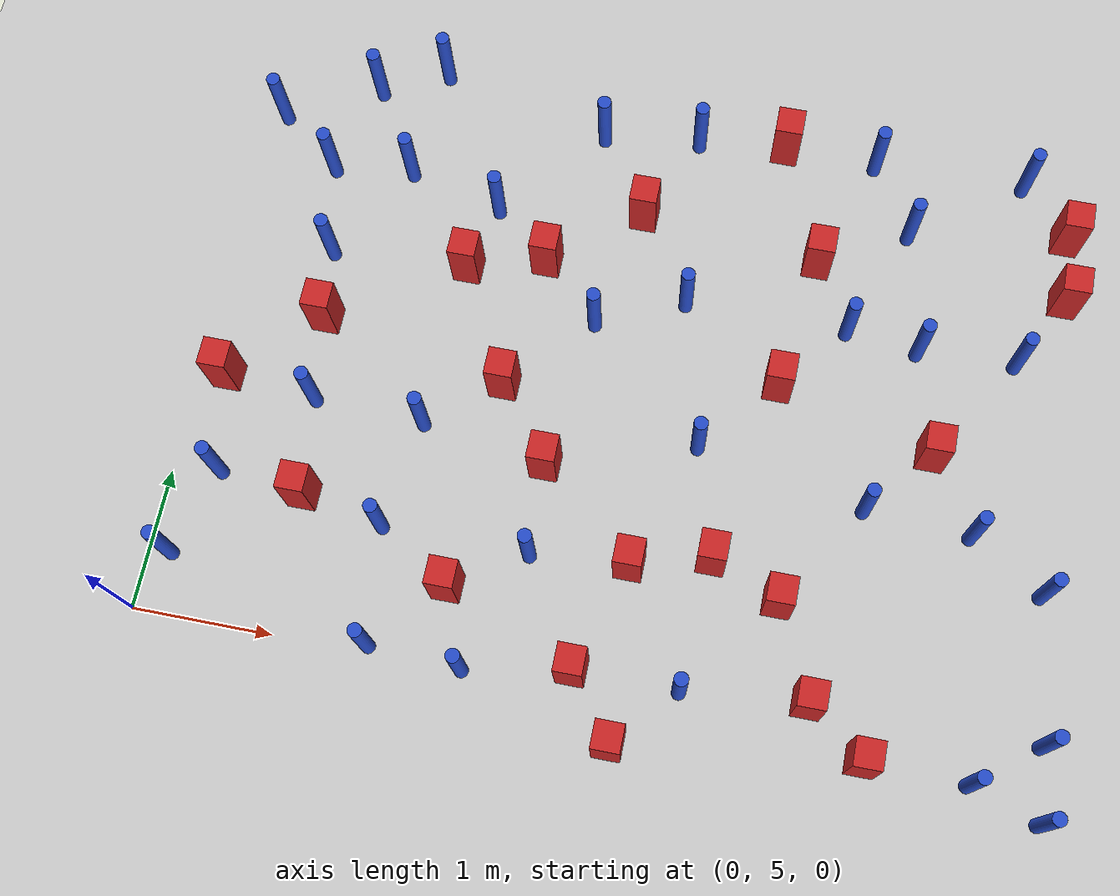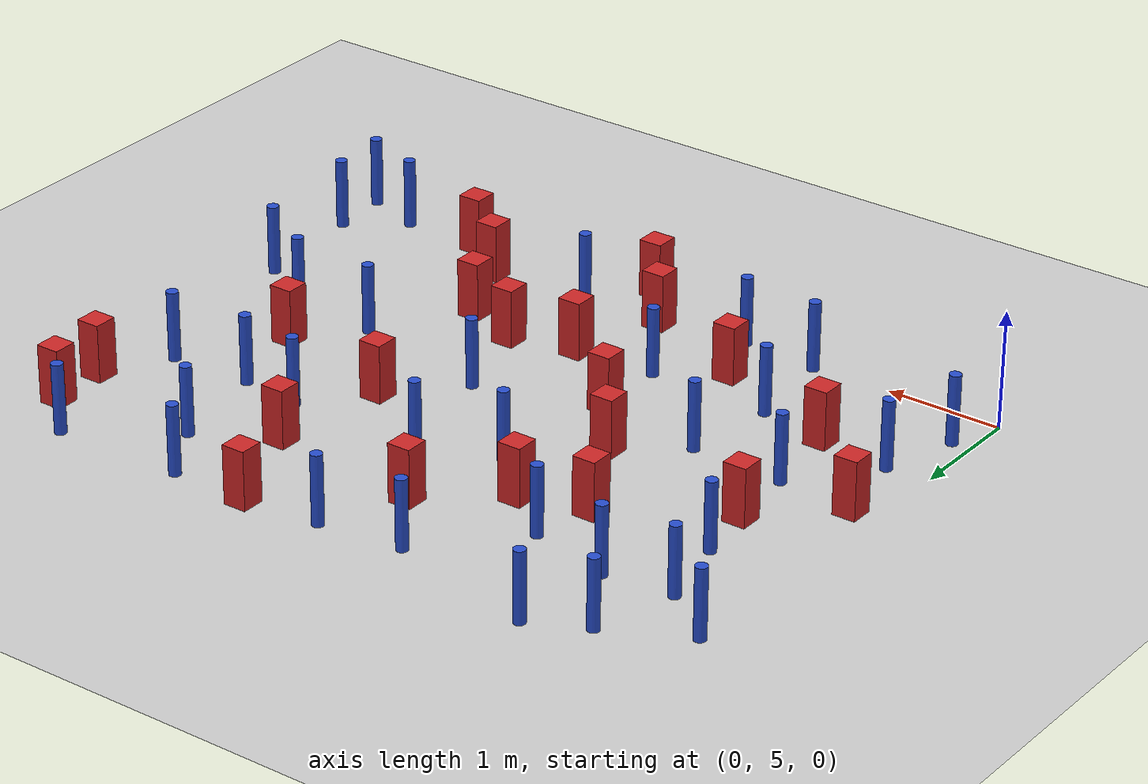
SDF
<sdf version="1.6">
 <world name="default">
  <model name="ground_plane">
   <static>1</static>
   <link name="link">
    <collision name="collision">
     <geometry><plane><normal>0 0 1</normal><size>100 100</size></plane></geometry>
     <surface><friction><ode><mu>100</mu><mu2>50</mu2></ode></friction></surface>
    </collision>
    <visual name="visual">
     <cast_shadows>0</cast_shadows>
     <geometry><plane><normal>0 0 1</normal><size>100 100</size></plane></geometry>
     <material>
      <ambient>1.0 1.0 1.0 1.0</ambient>
      <diffuse>0.8 0.8 0.8 1.0</diffuse>
      <specular>0.01 0.01 0.01 1.000000</specular>
     </material>
    </visual>
   </link>
  </model>
  <model name="pole_obstacle7">
   <static>true</static>
   <pose>3.3641014471 7.95612037145 7.38925637345e-09 -8.47170692799e-08 1.24976765031e-08 -1.7451309302e-07</pose>
   <link name="link">
    <pose>0 0 0.3 0 -0 0</pose>
    <inertial>
     <mass>1</mass>
     <inertia><ixx>0.145833</ixx><ixy>0</ixy><ixz>0</ixz><iyy>0.145833</iyy><iyz>0</iyz><izz>0.125</izz></inertia>
    </inertial>
    <collision name="collision">
     <geometry><cylinder><radius>0.05</radius><length>.6</length></cylinder></geometry>
    </collision>
    <visual name="visual">
     <geometry><cylinder><radius>0.05</radius><length>.6</length></cylinder></geometry>
     <material>
      <script><name>Gazebo/Blue</name><uri>file://media/materials/scripts/gazebo.material</uri></script>
     </material>
    </visual>
   </link>
  </model>
  <model name="square_post_obstacle9">
   <static>true</static>
   <pose>3.88361596768 6.09260042466 1.91545236811e-07 -7.35059704564e-06 1.12565212e-07 2.39332434364e-05</pose>
   <link name="link">
    <pose>0 0 0.25 0 -0 0</pose>
    <inertial>
     <mass>100</mass>
     <inertia>
      <ixx>0.166667</ixx>
      <ixy>0</ixy>
      <ixz>0</ixz>
      <iyy>0.166667</iyy>
      <iyz>0</iyz>
      <izz>0.166667</izz>
     </inertia>
    </inertial>
    <collision name="collision"><geometry><box><size>.2 .2 .5</size></box></geometry></collision>
    <visual name="visual">
     <geometry><box><size>.2 .2 .5</size></box></geometry>
     <material>
      <script><name>Gazebo/Red</name><uri>file://media/materials/scripts/gazebo.material</uri></script>
     </material>
    </visual>
   </link>
  </model>
  <model name="square_post_obstacle13">
   <static>true</static>
   <pose>4.26121895151 8.46386247633 1.91545236811e-07 -7.35059704564e-06 1.12565212e-07 2.39332434364e-05</pose>
   <link name="link">
    <pose>0 0 0.25 0 -0 0</pose>
    <inertial>
     <mass>100</mass>
     <inertia>
      <ixx>0.166667</ixx>
      <ixy>0</ixy>
      <ixz>0</ixz>
      <iyy>0.166667</iyy>
      <iyz>0</iyz>
      <izz>0.166667</izz>
     </inertia>
    </inertial>
    <collision name="collision"><geometry><box><size>.2 .2 .5</size></box></geometry></collision>
    <visual name="visual">
     <geometry><box><size>.2 .2 .5</size></box></geometry>
     <material>
      <script><name>Gazebo/Red</name><uri>file://media/materials/scripts/gazebo.material</uri></script>
     </material>
    </visual>
   </link>
  </model>
  <model name="square_post_obstacle14">
   <static>true</static>
   <pose>6.05690179406 9.00097728239 1.91545236811e-07 -7.35059704564e-06 1.12565212e-07 2.39332434364e-05</pose>
   <link name="link">
    <pose>0 0 0.25 0 -0 0</pose>
    <inertial>
     <mass>100</mass>
     <inertia>
      <ixx>0.166667</ixx>
      <ixy>0</ixy>
      <ixz>0</ixz>
      <iyy>0.166667</iyy>
      <iyz>0</iyz>
      <izz>0.166667</izz>
     </inertia>
    </inertial>
    <collision name="collision"><geometry><box><size>.2 .2 .5</size></box></geometry></collision>
    <visual name="visual">
     <geometry><box><size>.2 .2 .5</size></box></geometry>
     <material>
      <script><name>Gazebo/Red</name><uri>file://media/materials/scripts/gazebo.material</uri></script>
     </material>
    </visual>
   </link>
  </model>
  <model name="square_post_obstacle17">
   <static>true</static>
   <pose>3.32931835858 5.94401239555 1.91545236811e-07 -7.35059704564e-06 1.12565212e-07 2.39332434364e-05</pose>
   <link name="link">
    <pose>0 0 0.25 0 -0 0</pose>
    <inertial>
     <mass>100</mass>
     <inertia>
      <ixx>0.166667</ixx>
      <ixy>0</ixy>
      <ixz>0</ixz>
      <iyy>0.166667</iyy>
      <iyz>0</iyz>
      <izz>0.166667</izz>
     </inertia>
    </inertial>
    <collision name="collision"><geometry><box><size>.2 .2 .5</size></box></geometry></collision>
    <visual name="visual">
     <geometry><box><size>.2 .2 .5</size></box></geometry>
     <material>
      <script><name>Gazebo/Red</name><uri>file://media/materials/scripts/gazebo.material</uri></script>
     </material>
    </visual>
   </link>
  </model>
  <model name="pole_obstacle11">
   <static>true</static>
   <pose>3.23332634742 9.27613377009 7.38925637345e-09 -8.47170692793e-08 1.24976764408e-08 -1.74513093041e-07</pose>
   <link name="link">
    <pose>0 0 0.3 0 -0 0</pose>
    <inertial>
     <mass>1</mass>
     <inertia><ixx>0.145833</ixx><ixy>0</ixy><ixz>0</ixz><iyy>0.145833</iyy><iyz>0</iyz><izz>0.125</izz></inertia>
    </inertial>
    <collision name="collision">
     <geometry><cylinder><radius>0.05</radius><length>.6</length></cylinder></geometry>
    </collision>
    <visual name="visual">
     <geometry><cylinder><radius>0.05</radius><length>.6</length></cylinder></geometry>
     <material>
      <script><name>Gazebo/Blue</name><uri>file://media/materials/scripts/gazebo.material</uri></script>
     </material>
    </visual>
   </link>
  </model>
  <model name="pole_obstacle15">
   <static>true</static>
   <pose>6.16743594063 6.26657277974 7.38925637345e-09 -8.47170692796e-08 1.24976764786e-08 -1.74513093032e-07</pose>
   <link name="link">
    <pose>0 0 0.3 0 -0 0</pose>
    <inertial>
     <mass>1</mass>
     <inertia><ixx>0.145833</ixx><ixy>0</ixy><ixz>0</ixz><iyy>0.145833</iyy><iyz>0</iyz><izz>0.125</izz></inertia>
    </inertial>
    <collision name="collision">
     <geometry><cylinder><radius>0.05</radius><length>.6</length></cylinder></geometry>
    </collision>
    <visual name="visual">
     <geometry><cylinder><radius>0.05</radius><length>.6</length></cylinder></geometry>
     <material>
      <script><name>Gazebo/Blue</name><uri>file://media/materials/scripts/gazebo.material</uri></script>
     </material>
    </visual>
   </link>
  </model>
  <model name="square_post_obstacle26">
   <static>true</static>
   <pose>0.971629620544 6.01338458129 1.91545236811e-07 -7.35059704564e-06 1.12565212e-07 2.39332434364e-05</pose>
   <link name="link">
    <pose>0 0 0.25 0 -0 0</pose>
    <inertial>
     <mass>100</mass>
     <inertia>
      <ixx>0.166667</ixx>
      <ixy>0</ixy>
      <ixz>0</ixz>
      <iyy>0.166667</iyy>
      <iyz>0</iyz>
      <izz>0.166667</izz>
     </inertia>
    </inertial>
    <collision name="collision"><geometry><box><size>.2 .2 .5</size></box></geometry></collision>
    <visual name="visual">
     <geometry><box><size>.2 .2 .5</size></box></geometry>
     <material>
      <script><name>Gazebo/Red</name><uri>file://media/materials/scripts/gazebo.material</uri></script>
     </material>
    </visual>
   </link>
  </model>
  <model name="pole_obstacle21">
   <static>true</static>
   <pose>0.16636004101 5.42641811792 7.38925637345e-09 -8.471706928e-08 1.24976765036e-08 -1.74513093019e-07</pose>
   <link name="link">
    <pose>0 0 0.3 0 -0 0</pose>
    <inertial>
     <mass>1</mass>
     <inertia><ixx>0.145833</ixx><ixy>0</ixy><ixz>0</ixz><iyy>0.145833</iyy><iyz>0</iyz><izz>0.125</izz></inertia>
    </inertial>
    <collision name="collision">
     <geometry><cylinder><radius>0.05</radius><length>.6</length></cylinder></geometry>
    </collision>
    <visual name="visual">
     <geometry><cylinder><radius>0.05</radius><length>.6</length></cylinder></geometry>
     <material>
      <script><name>Gazebo/Blue</name><uri>file://media/materials/scripts/gazebo.material</uri></script>
     </material>
    </visual>
   </link>
  </model>
  <model name="pole_obstacle30">
   <static>true</static>
   <pose>3.82603627733 5.14343423166 7.38925637345e-09 -8.47170692798e-08 1.24976765033e-08 -1.74513093019e-07</pose>
   <link name="link">
    <pose>0 0 0.3 0 -0 0</pose>
    <inertial>
     <mass>1</mass>
     <inertia><ixx>0.145833</ixx><ixy>0</ixy><ixz>0</ixz><iyy>0.145833</iyy><iyz>0</iyz><izz>0.125</izz></inertia>
    </inertial>
    <collision name="collision">
     <geometry><cylinder><radius>0.05</radius><length>.6</length></cylinder></geometry>
    </collision>
    <visual name="visual">
     <geometry><cylinder><radius>0.05</radius><length>.6</length></cylinder></geometry>
     <material>
      <script><name>Gazebo/Blue</name><uri>file://media/materials/scripts/gazebo.material</uri></script>
     </material>
    </visual>
   </link>
  </model>
  <model name="pole_obstacle38">
   <static>true</static>
   <pose>4.55738648577 7.95785600806 7.38925637345e-09 -8.47170692799e-08 1.24976765036e-08 -1.74513093018e-07</pose>
   <link name="link">
    <pose>0 0 0.3 0 -0 0</pose>
    <inertial>
     <mass>1</mass>
     <inertia><ixx>0.145833</ixx><ixy>0</ixy><ixz>0</ixz><iyy>0.145833</iyy><iyz>0</iyz><izz>0.125</izz></inertia>
    </inertial>
    <collision name="collision">
     <geometry><cylinder><radius>0.05</radius><length>.6</length></cylinder></geometry>
    </collision>
    <visual name="visual">
     <geometry><cylinder><radius>0.05</radius><length>.6</length></cylinder></geometry>
     <material>
      <script><name>Gazebo/Blue</name><uri>file://media/materials/scripts/gazebo.material</uri></script>
     </material>
    </visual>
   </link>
  </model>
  <model name="pole_obstacle45">
   <static>true</static>
   <pose>2.73625837179 7.67666420585 7.38925637345e-09 -8.47170692798e-08 1.24976765033e-08 -1.74513093019e-07</pose>
   <link name="link">
    <pose>0 0 0.3 0 -0 0</pose>
    <inertial>
     <mass>1</mass>
     <inertia><ixx>0.145833</ixx><ixy>0</ixy><ixz>0</ixz><iyy>0.145833</iyy><iyz>0</iyz><izz>0.125</izz></inertia>
    </inertial>
    <collision name="collision">
     <geometry><cylinder><radius>0.05</radius><length>.6</length></cylinder></geometry>
    </collision>
    <visual name="visual">
     <geometry><cylinder><radius>0.05</radius><length>.6</length></cylinder></geometry>
     <material>
      <script><name>Gazebo/Blue</name><uri>file://media/materials/scripts/gazebo.material</uri></script>
     </material>
    </visual>
   </link>
  </model>
  <model name="pole_obstacle46">
   <static>true</static>
   <pose>0.87285349104 6.71497521717 7.38925637345e-09 -8.471706928e-08 1.24976765086e-08 -1.74513093015e-07</pose>
   <link name="link">
    <pose>0 0 0.3 0 -0 0</pose>
    <inertial>
     <mass>1</mass>
     <inertia><ixx>0.145833</ixx><ixy>0</ixy><ixz>0</ixz><iyy>0.145833</iyy><iyz>0</iyz><izz>0.125</izz></inertia>
    </inertial>
    <collision name="collision">
     <geometry><cylinder><radius>0.05</radius><length>.6</length></cylinder></geometry>
    </collision>
    <visual name="visual">
     <geometry><cylinder><radius>0.05</radius><length>.6</length></cylinder></geometry>
     <material>
      <script><name>Gazebo/Blue</name><uri>file://media/materials/scripts/gazebo.material</uri></script>
     </material>
    </visual>
   </link>
  </model>
  <model name="pole_obstacle47">
   <static>true</static>
   <pose>2.63045900332 5.88145914707 7.38925637345e-09 -8.47170692798e-08 1.24976765033e-08 -1.74513093019e-07</pose>
   <link name="link">
    <pose>0 0 0.3 0 -0 0</pose>
    <inertial>
     <mass>1</mass>
     <inertia><ixx>0.145833</ixx><ixy>0</ixy><ixz>0</ixz><iyy>0.145833</iyy><iyz>0</iyz><izz>0.125</izz></inertia>
    </inertial>
    <collision name="collision">
     <geometry><cylinder><radius>0.05</radius><length>.6</length></cylinder></geometry>
    </collision>
    <visual name="visual">
     <geometry><cylinder><radius>0.05</radius><length>.6</length></cylinder></geometry>
     <material>
      <script><name>Gazebo/Blue</name><uri>file://media/materials/scripts/gazebo.material</uri></script>
     </material>
    </visual>
   </link>
  </model>
  <model name="square_post_obstacle49">
   <static>true</static>
   <pose>6.09517958096 8.49704363982 1.91545236811e-07 -7.35059704564e-06 1.12565212e-07 2.39332434364e-05</pose>
   <link name="link">
    <pose>0 0 0.25 0 -0 0</pose>
    <inertial>
     <mass>100</mass>
     <inertia>
      <ixx>0.166667</ixx>
      <ixy>0</ixy>
      <ixz>0</ixz>
      <iyy>0.166667</iyy>
      <iyz>0</iyz>
      <izz>0.166667</izz>
     </inertia>
    </inertial>
    <collision name="collision"><geometry><box><size>.2 .2 .5</size></box></geometry></collision>
    <visual name="visual">
     <geometry><box><size>.2 .2 .5</size></box></geometry>
     <material>
      <script><name>Gazebo/Red</name><uri>file://media/materials/scripts/gazebo.material</uri></script>
     </material>
    </visual>
   </link>
  </model>
  <model name="square_post_obstacle53">
   <static>true</static>
   <pose>3.884253437 9.35670407465 1.91545236811e-07 -7.35059704564e-06 1.12565212e-07 2.39332434364e-05</pose>
   <link name="link">
    <pose>0 0 0.25 0 -0 0</pose>
    <inertial>
     <mass>100</mass>
     <inertia>
      <ixx>0.166667</ixx>
      <ixy>0</ixy>
      <ixz>0</ixz>
      <iyy>0.166667</iyy>
      <iyz>0</iyz>
      <izz>0.166667</izz>
     </inertia>
    </inertial>
    <collision name="collision"><geometry><box><size>.2 .2 .5</size></box></geometry></collision>
    <visual name="visual">
     <geometry><box><size>.2 .2 .5</size></box></geometry>
     <material>
      <script><name>Gazebo/Red</name><uri>file://media/materials/scripts/gazebo.material</uri></script>
     </material>
    </visual>
   </link>
  </model>
  <model name="pole_obstacle51">
   <static>true</static>
   <pose>2.51520003732 9.1883960675 7.38925637345e-09 -8.47170692793e-08 1.24976764408e-08 -1.74513093041e-07</pose>
   <link name="link">
    <pose>0 0 0.3 0 -0 0</pose>
    <inertial>
     <mass>1</mass>
     <inertia><ixx>0.145833</ixx><ixy>0</ixy><ixz>0</ixz><iyy>0.145833</iyy><iyz>0</iyz><izz>0.125</izz></inertia>
    </inertial>
    <collision name="collision">
     <geometry><cylinder><radius>0.05</radius><length>.6</length></cylinder></geometry>
    </collision>
    <visual name="visual">
     <geometry><cylinder><radius>0.05</radius><length>.6</length></cylinder></geometry>
     <material>
      <script><name>Gazebo/Blue</name><uri>file://media/materials/scripts/gazebo.material</uri></script>
     </material>
    </visual>
   </link>
  </model>
  <model name="square_post_obstacle54">
   <static>true</static>
   <pose>5.2866457135 7.13535375058 1.91545236811e-07 -7.35059704564e-06 1.12565212e-07 2.39332434364e-05</pose>
   <link name="link">
    <pose>0 0 0.25 0 -0 0</pose>
    <inertial>
     <mass>100</mass>
     <inertia>
      <ixx>0.166667</ixx>
      <ixy>0</ixy>
      <ixz>0</ixz>
      <iyy>0.166667</iyy>
      <iyz>0</iyz>
      <izz>0.166667</izz>
     </inertia>
    </inertial>
    <collision name="collision"><geometry><box><size>.2 .2 .5</size></box></geometry></collision>
    <visual name="visual">
     <geometry><box><size>.2 .2 .5</size></box></geometry>
     <material>
      <script><name>Gazebo/Red</name><uri>file://media/materials/scripts/gazebo.material</uri></script>
     </material>
    </visual>
   </link>
  </model>
  <model name="square_post_obstacle60">
   <static>true</static>
   <pose>5.10158949251 4.92341636179 1.91545236811e-07 -7.35059704564e-06 1.12565212e-07 2.39332434364e-05</pose>
   <link name="link">
    <pose>0 0 0.25 0 -0 0</pose>
    <inertial>
     <mass>100</mass>
     <inertia>
      <ixx>0.166667</ixx>
      <ixy>0</ixy>
      <ixz>0</ixz>
      <iyy>0.166667</iyy>
      <iyz>0</iyz>
      <izz>0.166667</izz>
     </inertia>
    </inertial>
    <collision name="collision"><geometry><box><size>.2 .2 .5</size></box></geometry></collision>
    <visual name="visual">
     <geometry><box><size>.2 .2 .5</size></box></geometry>
     <material>
      <script><name>Gazebo/Red</name><uri>file://media/materials/scripts/gazebo.material</uri></script>
     </material>
    </visual>
   </link>
  </model>
  <model name="pole_obstacle58">
   <static>true</static>
   <pose>4.89927558171 8.80947937194 7.38925637345e-09 -8.471706928e-08 1.24976765081e-08 -1.74513093015e-07</pose>
   <link name="link">
    <pose>0 0 0.3 0 -0 0</pose>
    <inertial>
     <mass>1</mass>
     <inertia><ixx>0.145833</ixx><ixy>0</ixy><ixz>0</ixz><iyy>0.145833</iyy><iyz>0</iyz><izz>0.125</izz></inertia>
    </inertial>
    <collision name="collision">
     <geometry><cylinder><radius>0.05</radius><length>.6</length></cylinder></geometry>
    </collision>
    <visual name="visual">
     <geometry><cylinder><radius>0.05</radius><length>.6</length></cylinder></geometry>
     <material>
      <script><name>Gazebo/Blue</name><uri>file://media/materials/scripts/gazebo.material</uri></script>
     </material>
    </visual>
   </link>
  </model>
  <model name="square_post_obstacle62">
   <static>true</static>
   <pose>2.12032532156 5.55878050166 1.91545236811e-07 -7.35059704564e-06 1.12565212e-07 2.39332434364e-05</pose>
   <link name="link">
    <pose>0 0 0.25 0 -0 0</pose>
    <inertial>
     <mass>100</mass>
     <inertia>
      <ixx>0.166667</ixx>
      <ixy>0</ixy>
      <ixz>0</ixz>
      <iyy>0.166667</iyy>
      <iyz>0</iyz>
      <izz>0.166667</izz>
     </inertia>
    </inertial>
    <collision name="collision"><geometry><box><size>.2 .2 .5</size></box></geometry></collision>
    <visual name="visual">
     <geometry><box><size>.2 .2 .5</size></box></geometry>
     <material>
      <script><name>Gazebo/Red</name><uri>file://media/materials/scripts/gazebo.material</uri></script>
     </material>
    </visual>
   </link>
  </model>
  <model name="pole_obstacle61">
   <static>true</static>
   <pose>5.63658487548 6.59278703696 7.38925637345e-09 -8.47170692796e-08 1.24976764786e-08 -1.74513093032e-07</pose>
   <link name="link">
    <pose>0 0 0.3 0 -0 0</pose>
    <inertial>
     <mass>1</mass>
     <inertia><ixx>0.145833</ixx><ixy>0</ixy><ixz>0</ixz><iyy>0.145833</iyy><iyz>0</iyz><izz>0.125</izz></inertia>
    </inertial>
    <collision name="collision">
     <geometry><cylinder><radius>0.05</radius><length>.6</length></cylinder></geometry>
    </collision>
    <visual name="visual">
     <geometry><cylinder><radius>0.05</radius><length>.6</length></cylinder></geometry>
     <material>
      <script><name>Gazebo/Blue</name><uri>file://media/materials/scripts/gazebo.material</uri></script>
     </material>
    </visual>
   </link>
  </model>
  <model name="square_post_obstacle65">
   <static>true</static>
   <pose>2.93085732012 8.60398159734 1.91545236811e-07 -7.35059704564e-06 1.12565212e-07 2.39332434364e-05</pose>
   <link name="link">
    <pose>0 0 0.25 0 -0 0</pose>
    <inertial>
     <mass>100</mass>
     <inertia>
      <ixx>0.166667</ixx>
      <ixy>0</ixy>
      <ixz>0</ixz>
      <iyy>0.166667</iyy>
      <iyz>0</iyz>
      <izz>0.166667</izz>
     </inertia>
    </inertial>
    <collision name="collision"><geometry><box><size>.2 .2 .5</size></box></geometry></collision>
    <visual name="visual">
     <geometry><box><size>.2 .2 .5</size></box></geometry>
     <material>
      <script><name>Gazebo/Red</name><uri>file://media/materials/scripts/gazebo.material</uri></script>
     </material>
    </visual>
   </link>
  </model>
  <model name="pole_obstacle73">
   <static>true</static>
   <pose>4.8732588762 6.64053298827 7.38925637345e-09 -8.47170692796e-08 1.24976764786e-08 -1.74513093032e-07</pose>
   <link name="link">
    <pose>0 0 0.3 0 -0 0</pose>
    <inertial>
     <mass>1</mass>
     <inertia><ixx>0.145833</ixx><ixy>0</ixy><ixz>0</ixz><iyy>0.145833</iyy><iyz>0</iyz><izz>0.125</izz></inertia>
    </inertial>
    <collision name="collision">
     <geometry><cylinder><radius>0.05</radius><length>.6</length></cylinder></geometry>
    </collision>
    <visual name="visual">
     <geometry><cylinder><radius>0.05</radius><length>.6</length></cylinder></geometry>
     <material>
      <script><name>Gazebo/Blue</name><uri>file://media/materials/scripts/gazebo.material</uri></script>
     </material>
    </visual>
   </link>
  </model>
  <model name="pole_obstacle89">
   <static>true</static>
   <pose>0.750712976867 9.25422018219 7.38925637345e-09 -8.47170692797e-08 1.249767648e-08 -1.74513093032e-07</pose>
   <link name="link">
    <pose>0 0 0.3 0 -0 0</pose>
    <inertial>
     <mass>1</mass>
     <inertia><ixx>0.145833</ixx><ixy>0</ixy><ixz>0</ixz><iyy>0.145833</iyy><iyz>0</iyz><izz>0.125</izz></inertia>
    </inertial>
    <collision name="collision">
     <geometry><cylinder><radius>0.05</radius><length>.6</length></cylinder></geometry>
    </collision>
    <visual name="visual">
     <geometry><cylinder><radius>0.05</radius><length>.6</length></cylinder></geometry>
     <material>
      <script><name>Gazebo/Blue</name><uri>file://media/materials/scripts/gazebo.material</uri></script>
     </material>
    </visual>
   </link>
  </model>
  <model name="pole_obstacle92">
   <static>true</static>
   <pose>1.22454263796 9.4873742608 7.38925637345e-09 -8.47170692798e-08 1.24976764881e-08 -1.74513093027e-07</pose>
   <link name="link">
    <pose>0 0 0.3 0 -0 0</pose>
    <inertial>
     <mass>1</mass>
     <inertia><ixx>0.145833</ixx><ixy>0</ixy><ixz>0</ixz><iyy>0.145833</iyy><iyz>0</iyz><izz>0.125</izz></inertia>
    </inertial>
    <collision name="collision">
     <geometry><cylinder><radius>0.05</radius><length>.6</length></cylinder></geometry>
    </collision>
    <visual name="visual">
     <geometry><cylinder><radius>0.05</radius><length>.6</length></cylinder></geometry>
     <material>
      <script><name>Gazebo/Blue</name><uri>file://media/materials/scripts/gazebo.material</uri></script>
     </material>
    </visual>
   </link>
  </model>
  <model name="square_post_obstacle86">
   <static>true</static>
   <pose>1.72917947099 7.93961223936 1.91545236811e-07 -7.35059704564e-06 1.12565212e-07 2.39332434364e-05</pose>
   <link name="link">
    <pose>0 0 0.25 0 -0 0</pose>
    <inertial>
     <mass>100</mass>
     <inertia>
      <ixx>0.166667</ixx>
      <ixy>0</ixy>
      <ixz>0</ixz>
      <iyy>0.166667</iyy>
      <iyz>0</iyz>
      <izz>0.166667</izz>
     </inertia>
    </inertial>
    <collision name="collision"><geometry><box><size>.2 .2 .5</size></box></geometry></collision>
    <visual name="visual">
     <geometry><box><size>.2 .2 .5</size></box></geometry>
     <material>
      <script><name>Gazebo/Red</name><uri>file://media/materials/scripts/gazebo.material</uri></script>
     </material>
    </visual>
   </link>
  </model>
  <model name="pole_obstacle102">
   <static>true</static>
   <pose>2.34047417369 5.00897981258 7.38925637345e-09 -8.47170692798e-08 1.24976765033e-08 -1.74513093019e-07</pose>
   <link name="link">
    <pose>0 0 0.3 0 -0 0</pose>
    <inertial>
     <mass>1</mass>
     <inertia><ixx>0.145833</ixx><ixy>0</ixy><ixz>0</ixz><iyy>0.145833</iyy><iyz>0</iyz><izz>0.125</izz></inertia>
    </inertial>
    <collision name="collision">
     <geometry><cylinder><radius>0.05</radius><length>.6</length></cylinder></geometry>
    </collision>
    <visual name="visual">
     <geometry><cylinder><radius>0.05</radius><length>.6</length></cylinder></geometry>
     <material>
      <script><name>Gazebo/Blue</name><uri>file://media/materials/scripts/gazebo.material</uri></script>
     </material>
    </visual>
   </link>
  </model>
  <model name="pole_obstacle115">
   <static>true</static>
   <pose>1.68137408483 6.68443940497 7.38925637345e-09 -8.47170692799e-08 1.24976765033e-08 -1.74513093018e-07</pose>
   <link name="link">
    <pose>0 0 0.3 0 -0 0</pose>
    <inertial>
     <mass>1</mass>
     <inertia><ixx>0.145833</ixx><ixy>0</ixy><ixz>0</ixz><iyy>0.145833</iyy><iyz>0</iyz><izz>0.125</izz></inertia>
    </inertial>
    <collision name="collision">
     <geometry><cylinder><radius>0.05</radius><length>.6</length></cylinder></geometry>
    </collision>
    <visual name="visual">
     <geometry><cylinder><radius>0.05</radius><length>.6</length></cylinder></geometry>
     <material>
      <script><name>Gazebo/Blue</name><uri>file://media/materials/scripts/gazebo.material</uri></script>
     </material>
    </visual>
   </link>
  </model>
  <model name="pole_obstacle124">
   <static>true</static>
   <pose>1.67587254096 5.04920411947 7.38925637345e-09 -8.47170692799e-08 1.24976765033e-08 -1.74513093018e-07</pose>
   <link name="link">
    <pose>0 0 0.3 0 -0 0</pose>
    <inertial>
     <mass>1</mass>
     <inertia><ixx>0.145833</ixx><ixy>0</ixy><ixz>0</ixz><iyy>0.145833</iyy><iyz>0</iyz><izz>0.125</izz></inertia>
    </inertial>
    <collision name="collision">
     <geometry><cylinder><radius>0.05</radius><length>.6</length></cylinder></geometry>
    </collision>
    <visual name="visual">
     <geometry><cylinder><radius>0.05</radius><length>.6</length></cylinder></geometry>
     <material>
      <script><name>Gazebo/Blue</name><uri>file://media/materials/scripts/gazebo.material</uri></script>
     </material>
    </visual>
   </link>
  </model>
  <model name="pole_obstacle125">
   <static>true</static>
   <pose>6.27855258848 5.24458494687 7.38925637345e-09 -8.47170692796e-08 1.24976764786e-08 -1.74513093032e-07</pose>
   <link name="link">
    <pose>0 0 0.3 0 -0 0</pose>
    <inertial>
     <mass>1</mass>
     <inertia><ixx>0.145833</ixx><ixy>0</ixy><ixz>0</ixz><iyy>0.145833</iyy><iyz>0</iyz><izz>0.125</izz></inertia>
    </inertial>
    <collision name="collision">
     <geometry><cylinder><radius>0.05</radius><length>.6</length></cylinder></geometry>
    </collision>
    <visual name="visual">
     <geometry><cylinder><radius>0.05</radius><length>.6</length></cylinder></geometry>
     <material>
      <script><name>Gazebo/Blue</name><uri>file://media/materials/scripts/gazebo.material</uri></script>
     </material>
    </visual>
   </link>
  </model>
  <model name="pole_obstacle128">
   <static>true</static>
   <pose>0.713033270021 7.86758338504 7.38925637345e-09 -8.471706928e-08 1.24976765086e-08 -1.74513093015e-07</pose>
   <link name="link">
    <pose>0 0 0.3 0 -0 0</pose>
    <inertial>
     <mass>1</mass>
     <inertia><ixx>0.145833</ixx><ixy>0</ixy><ixz>0</ixz><iyy>0.145833</iyy><iyz>0</iyz><izz>0.125</izz></inertia>
    </inertial>
    <collision name="collision">
     <geometry><cylinder><radius>0.05</radius><length>.6</length></cylinder></geometry>
    </collision>
    <visual name="visual">
     <geometry><cylinder><radius>0.05</radius><length>.6</length></cylinder></geometry>
     <material>
      <script><name>Gazebo/Blue</name><uri>file://media/materials/scripts/gazebo.material</uri></script>
     </material>
    </visual>
   </link>
  </model>
  <model name="pole_obstacle132">
   <static>true</static>
   <pose>0.0785864944392 8.91196981542 7.38925637345e-09 -8.47170692797e-08 1.24976764742e-08 -1.74513093035e-07</pose>
   <link name="link">
    <pose>0 0 0.3 0 -0 0</pose>
    <inertial>
     <mass>1</mass>
     <inertia><ixx>0.145833</ixx><ixy>0</ixy><ixz>0</ixz><iyy>0.145833</iyy><iyz>0</iyz><izz>0.125</izz></inertia>
    </inertial>
    <collision name="collision">
     <geometry><cylinder><radius>0.05</radius><length>.6</length></cylinder></geometry>
    </collision>
    <visual name="visual">
     <geometry><cylinder><radius>0.05</radius><length>.6</length></cylinder></geometry>
     <material>
      <script><name>Gazebo/Blue</name><uri>file://media/materials/scripts/gazebo.material</uri></script>
     </material>
    </visual>
   </link>
  </model>
  <model name="pole_obstacle136">
   <static>true</static>
   <pose>5.69758599064 9.36986856198 7.38925637345e-09 -8.471706928e-08 1.24976765081e-08 -1.74513093015e-07</pose>
   <link name="link">
    <pose>0 0 0.3 0 -0 0</pose>
    <inertial>
     <mass>1</mass>
     <inertia><ixx>0.145833</ixx><ixy>0</ixy><ixz>0</ixz><iyy>0.145833</iyy><iyz>0</iyz><izz>0.125</izz></inertia>
    </inertial>
    <collision name="collision">
     <geometry><cylinder><radius>0.05</radius><length>.6</length></cylinder></geometry>
    </collision>
    <visual name="visual">
     <geometry><cylinder><radius>0.05</radius><length>.6</length></cylinder></geometry>
     <material>
      <script><name>Gazebo/Blue</name><uri>file://media/materials/scripts/gazebo.material</uri></script>
     </material>
    </visual>
   </link>
  </model>
  <model name="square_post_obstacle145">
   <static>true</static>
   <pose>0.205783127508 6.7815366723 1.91545236811e-07 -7.35059704564e-06 1.12565212e-07 2.39332434364e-05</pose>
   <link name="link">
    <pose>0 0 0.25 0 -0 0</pose>
    <inertial>
     <mass>100</mass>
     <inertia>
      <ixx>0.166667</ixx>
      <ixy>0</ixy>
      <ixz>0</ixz>
      <iyy>0.166667</iyy>
      <iyz>0</iyz>
      <izz>0.166667</izz>
     </inertia>
    </inertial>
    <collision name="collision"><geometry><box><size>.2 .2 .5</size></box></geometry></collision>
    <visual name="visual">
     <geometry><box><size>.2 .2 .5</size></box></geometry>
     <material>
      <script><name>Gazebo/Red</name><uri>file://media/materials/scripts/gazebo.material</uri></script>
     </material>
    </visual>
   </link>
  </model>
  <model name="square_post_obstacle162">
   <static>true</static>
   <pose>2.18764222989 7.09079833375 1.91545236811e-07 -7.35059704564e-06 1.12565212e-07 2.39332434364e-05</pose>
   <link name="link">
    <pose>0 0 0.25 0 -0 0</pose>
    <inertial>
     <mass>100</mass>
     <inertia>
      <ixx>0.166667</ixx>
      <ixy>0</ixy>
      <ixz>0</ixz>
      <iyy>0.166667</iyy>
      <iyz>0</iyz>
      <izz>0.166667</izz>
     </inertia>
    </inertial>
    <collision name="collision"><geometry><box><size>.2 .2 .5</size></box></geometry></collision>
    <visual name="visual">
     <geometry><box><size>.2 .2 .5</size></box></geometry>
     <material>
      <script><name>Gazebo/Red</name><uri>file://media/materials/scripts/gazebo.material</uri></script>
     </material>
    </visual>
   </link>
  </model>
  <model name="pole_obstacle175">
   <static>true</static>
   <pose>5.08629785807 7.89392685855 7.38925637345e-09 -8.47170692796e-08 1.24976764786e-08 -1.74513093032e-07</pose>
   <link name="link">
    <pose>0 0 0.3 0 -0 0</pose>
    <inertial>
     <mass>1</mass>
     <inertia><ixx>0.145833</ixx><ixy>0</ixy><ixz>0</ixz><iyy>0.145833</iyy><iyz>0</iyz><izz>0.125</izz></inertia>
    </inertial>
    <collision name="collision">
     <geometry><cylinder><radius>0.05</radius><length>.6</length></cylinder></geometry>
    </collision>
    <visual name="visual">
     <geometry><cylinder><radius>0.05</radius><length>.6</length></cylinder></geometry>
     <material>
      <script><name>Gazebo/Blue</name><uri>file://media/materials/scripts/gazebo.material</uri></script>
     </material>
    </visual>
   </link>
  </model>
  <model name="square_post_obstacle176">
   <static>true</static>
   <pose>3.42399658044 4.7081084345 1.91545236811e-07 -7.35059704564e-06 1.12565212e-07 2.39332434364e-05</pose>
   <link name="link">
    <pose>0 0 0.25 0 -0 0</pose>
    <inertial>
     <mass>100</mass>
     <inertia>
      <ixx>0.166667</ixx>
      <ixy>0</ixy>
      <ixz>0</ixz>
      <iyy>0.166667</iyy>
      <iyz>0</iyz>
      <izz>0.166667</izz>
     </inertia>
    </inertial>
    <collision name="collision"><geometry><box><size>.2 .2 .5</size></box></geometry></collision>
    <visual name="visual">
     <geometry><box><size>.2 .2 .5</size></box></geometry>
     <material>
      <script><name>Gazebo/Red</name><uri>file://media/materials/scripts/gazebo.material</uri></script>
     </material>
    </visual>
   </link>
  </model>
  <model name="square_post_obstacle178">
   <static>true</static>
   <pose>2.60594235433 6.5482402301 1.91545236811e-07 -7.35059704564e-06 1.12565212e-07 2.39332434364e-05</pose>
   <link name="link">
    <pose>0 0 0.25 0 -0 0</pose>
    <inertial>
     <mass>100</mass>
     <inertia>
      <ixx>0.166667</ixx>
      <ixy>0</ixy>
      <ixz>0</ixz>
      <iyy>0.166667</iyy>
      <iyz>0</iyz>
      <izz>0.166667</izz>
     </inertia>
    </inertial>
    <collision name="collision"><geometry><box><size>.2 .2 .5</size></box></geometry></collision>
    <visual name="visual">
     <geometry><box><size>.2 .2 .5</size></box></geometry>
     <material>
      <script><name>Gazebo/Red</name><uri>file://media/materials/scripts/gazebo.material</uri></script>
     </material>
    </visual>
   </link>
  </model>
  <model name="square_post_obstacle179">
   <static>true</static>
   <pose>2.29239088579 8.10037207864 1.91545236811e-07 -7.35059704564e-06 1.12565212e-07 2.39332434364e-05</pose>
   <link name="link">
    <pose>0 0 0.25 0 -0 0</pose>
    <inertial>
     <mass>100</mass>
     <inertia>
      <ixx>0.166667</ixx>
      <ixy>0</ixy>
      <ixz>0</ixz>
      <iyy>0.166667</iyy>
      <iyz>0</iyz>
      <izz>0.166667</izz>
     </inertia>
    </inertial>
    <collision name="collision"><geometry><box><size>.2 .2 .5</size></box></geometry></collision>
    <visual name="visual">
     <geometry><box><size>.2 .2 .5</size></box></geometry>
     <material>
      <script><name>Gazebo/Red</name><uri>file://media/materials/scripts/gazebo.material</uri></script>
     </material>
    </visual>
   </link>
  </model>
  <model name="square_post_obstacle187">
   <static>true</static>
   <pose>4.38208616744 5.88177784178 1.91545236811e-07 -7.35059704564e-06 1.12565212e-07 2.39332434364e-05</pose>
   <link name="link">
    <pose>0 0 0.25 0 -0 0</pose>
    <inertial>
     <mass>100</mass>
     <inertia>
      <ixx>0.166667</ixx>
      <ixy>0</ixy>
      <ixz>0</ixz>
      <iyy>0.166667</iyy>
      <iyz>0</iyz>
      <izz>0.166667</izz>
     </inertia>
    </inertial>
    <collision name="collision"><geometry><box><size>.2 .2 .5</size></box></geometry></collision>
    <visual name="visual">
     <geometry><box><size>.2 .2 .5</size></box></geometry>
     <material>
      <script><name>Gazebo/Red</name><uri>file://media/materials/scripts/gazebo.material</uri></script>
     </material>
    </visual>
   </link>
  </model>
  <model name="square_post_obstacle189">
   <static>true</static>
   <pose>0.796801242032 7.35176046326 1.91545236811e-07 -7.35059704564e-06 1.12565212e-07 2.39332434364e-05</pose>
   <link name="link">
    <pose>0 0 0.25 0 -0 0</pose>
    <inertial>
     <mass>100</mass>
     <inertia>
      <ixx>0.166667</ixx>
      <ixy>0</ixy>
      <ixz>0</ixz>
      <iyy>0.166667</iyy>
      <iyz>0</iyz>
      <izz>0.166667</izz>
     </inertia>
    </inertial>
    <collision name="collision"><geometry><box><size>.2 .2 .5</size></box></geometry></collision>
    <visual name="visual">
     <geometry><box><size>.2 .2 .5</size></box></geometry>
     <material>
      <script><name>Gazebo/Red</name><uri>file://media/materials/scripts/gazebo.material</uri></script>
     </material>
    </visual>
   </link>
  </model>
  <model name="square_post_obstacle191">
   <static>true</static>
   <pose>4.13201983244 7.44890417376 1.91545236811e-07 -7.35059704564e-06 1.12565212e-07 2.39332434364e-05</pose>
   <link name="link">
    <pose>0 0 0.25 0 -0 0</pose>
    <inertial>
     <mass>100</mass>
     <inertia>
      <ixx>0.166667</ixx>
      <ixy>0</ixy>
      <ixz>0</ixz>
      <iyy>0.166667</iyy>
      <iyz>0</iyz>
      <izz>0.166667</izz>
     </inertia>
    </inertial>
    <collision name="collision"><geometry><box><size>.2 .2 .5</size></box></geometry></collision>
    <visual name="visual">
     <geometry><box><size>.2 .2 .5</size></box></geometry>
     <material>
      <script><name>Gazebo/Red</name><uri>file://media/materials/scripts/gazebo.material</uri></script>
     </material>
    </visual>
   </link>
  </model>
  <model name="square_post_obstacle198">
   <static>true</static>
   <pose>3.08422080602 5.15163072522 1.91545236811e-07 -7.35059704564e-06 1.12565212e-07 2.39332434364e-05</pose>
   <link name="link">
    <pose>0 0 0.25 0 -0 0</pose>
    <inertial>
     <mass>100</mass>
     <inertia>
      <ixx>0.166667</ixx>
      <ixy>0</ixy>
      <ixz>0</ixz>
      <iyy>0.166667</iyy>
      <iyz>0</iyz>
      <izz>0.166667</izz>
     </inertia>
    </inertial>
    <collision name="collision"><geometry><box><size>.2 .2 .5</size></box></geometry></collision>
    <visual name="visual">
     <geometry><box><size>.2 .2 .5</size></box></geometry>
     <material>
      <script><name>Gazebo/Red</name><uri>file://media/materials/scripts/gazebo.material</uri></script>
     </material>
    </visual>
   </link>
  </model>
  <model name="pole_obstacle190">
   <static>true</static>
   <pose>5.82374703323 4.90031066615 7.38925637345e-09 -8.47170692796e-08 1.24976764786e-08 -1.74513093032e-07</pose>
   <link name="link">
    <pose>0 0 0.3 0 -0 0</pose>
    <inertial>
     <mass>1</mass>
     <inertia><ixx>0.145833</ixx><ixy>0</ixy><ixz>0</ixz><iyy>0.145833</iyy><iyz>0</iyz><izz>0.125</izz></inertia>
    </inertial>
    <collision name="collision">
     <geometry><cylinder><radius>0.05</radius><length>.6</length></cylinder></geometry>
    </collision>
    <visual name="visual">
     <geometry><cylinder><radius>0.05</radius><length>.6</length></cylinder></geometry>
     <material>
      <script><name>Gazebo/Blue</name><uri>file://media/materials/scripts/gazebo.material</uri></script>
     </material>
    </visual>
   </link>
  </model>
  <model name="pole_obstacle193">
   <static>true</static>
   <pose>1.85233272914 8.44027910052 7.38925637345e-09 -8.47170692798e-08 1.24976764881e-08 -1.74513093027e-07</pose>
   <link name="link">
    <pose>0 0 0.3 0 -0 0</pose>
    <inertial>
     <mass>1</mass>
     <inertia><ixx>0.145833</ixx><ixy>0</ixy><ixz>0</ixz><iyy>0.145833</iyy><iyz>0</iyz><izz>0.125</izz></inertia>
    </inertial>
    <collision name="collision">
     <geometry><cylinder><radius>0.05</radius><length>.6</length></cylinder></geometry>
    </collision>
    <visual name="visual">
     <geometry><cylinder><radius>0.05</radius><length>.6</length></cylinder></geometry>
     <material>
      <script><name>Gazebo/Blue</name><uri>file://media/materials/scripts/gazebo.material</uri></script>
     </material>
    </visual>
   </link>
  </model>
  <model name="pole_obstacle198">
   <static>true</static>
   <pose>1.5695794409 5.88697463802 7.38925637345e-09 -8.47170692799e-08 1.24976765033e-08 -1.74513093018e-07</pose>
   <link name="link">
    <pose>0 0 0.3 0 -0 0</pose>
    <inertial>
     <mass>1</mass>
     <inertia><ixx>0.145833</ixx><ixy>0</ixy><ixz>0</ixz><iyy>0.145833</iyy><iyz>0</iyz><izz>0.125</izz></inertia>
    </inertial>
    <collision name="collision">
     <geometry><cylinder><radius>0.05</radius><length>.6</length></cylinder></geometry>
    </collision>
    <visual name="visual">
     <geometry><cylinder><radius>0.05</radius><length>.6</length></cylinder></geometry>
     <material>
      <script><name>Gazebo/Blue</name><uri>file://media/materials/scripts/gazebo.material</uri></script>
     </material>
    </visual>
   </link>
  </model>
  <model name="pole_obstacle209">
   <static>true</static>
   <pose>6.31395494196 4.73380437029 7.38925637345e-09 -8.47170692796e-08 1.24976764786e-08 -1.74513093032e-07</pose>
   <link name="link">
    <pose>0 0 0.3 0 -0 0</pose>
    <inertial>
     <mass>1</mass>
     <inertia><ixx>0.145833</ixx><ixy>0</ixy><ixz>0</ixz><iyy>0.145833</iyy><iyz>0</iyz><izz>0.125</izz></inertia>
    </inertial>
    <collision name="collision">
     <geometry><cylinder><radius>0.05</radius><length>.6</length></cylinder></geometry>
    </collision>
    <visual name="visual">
     <geometry><cylinder><radius>0.05</radius><length>.6</length></cylinder></geometry>
     <material>
      <script><name>Gazebo/Blue</name><uri>file://media/materials/scripts/gazebo.material</uri></script>
     </material>
    </visual>
   </link>
  </model>
  <model name="pole_obstacle210">
   <static>true</static>
   <pose>1.144257883 8.61813111165 7.38925637345e-09 -8.47170692798e-08 1.24976764881e-08 -1.74513093027e-07</pose>
   <link name="link">
    <pose>0 0 0.3 0 -0 0</pose>
    <inertial>
     <mass>1</mass>
     <inertia><ixx>0.145833</ixx><ixy>0</ixy><ixz>0</ixz><iyy>0.145833</iyy><iyz>0</iyz><izz>0.125</izz></inertia>
    </inertial>
    <collision name="collision">
     <geometry><cylinder><radius>0.05</radius><length>.6</length></cylinder></geometry>
    </collision>
    <visual name="visual">
     <geometry><cylinder><radius>0.05</radius><length>.6</length></cylinder></geometry>
     <material>
      <script><name>Gazebo/Blue</name><uri>file://media/materials/scripts/gazebo.material</uri></script>
     </material>
    </visual>
   </link>
  </model>
  <model name="pole_obstacle213">
   <static>true</static>
   <pose>3.64585226898 6.88268369788 7.38925637345e-09 -8.47170692798e-08 1.24976765033e-08 -1.74513093019e-07</pose>
   <link name="link">
    <pose>0 0 0.3 0 -0 0</pose>
    <inertial>
     <mass>1</mass>
     <inertia><ixx>0.145833</ixx><ixy>0</ixy><ixz>0</ixz><iyy>0.145833</iyy><iyz>0</iyz><izz>0.125</izz></inertia>
    </inertial>
    <collision name="collision">
     <geometry><cylinder><radius>0.05</radius><length>.6</length></cylinder></geometry>
    </collision>
    <visual name="visual">
     <geometry><cylinder><radius>0.05</radius><length>.6</length></cylinder></geometry>
     <material>
      <script><name>Gazebo/Blue</name><uri>file://media/materials/scripts/gazebo.material</uri></script>
     </material>
    </visual>
   </link>
  </model>
  <model name="pole_obstacle215">
   <static>true</static>
   <pose>5.80042528083 7.9312466507 7.38925637345e-09 -8.47170692796e-08 1.24976764786e-08 -1.74513093032e-07</pose>
   <link name="link">
    <pose>0 0 0.3 0 -0 0</pose>
    <inertial>
     <mass>1</mass>
     <inertia><ixx>0.145833</ixx><ixy>0</ixy><ixz>0</ixz><iyy>0.145833</iyy><iyz>0</iyz><izz>0.125</izz></inertia>
    </inertial>
    <collision name="collision">
     <geometry><cylinder><radius>0.05</radius><length>.6</length></cylinder></geometry>
    </collision>
    <visual name="visual">
     <geometry><cylinder><radius>0.05</radius><length>.6</length></cylinder></geometry>
     <material>
      <script><name>Gazebo/Blue</name><uri>file://media/materials/scripts/gazebo.material</uri></script>
     </material>
    </visual>
   </link>
  </model>
  <model name="pole_obstacle219">
   <static>true</static>
   <pose>4.57257230784 9.3338189207 7.38925637345e-09 -8.471706928e-08 1.24976765081e-08 -1.74513093015e-07</pose>
   <link name="link">
    <pose>0 0 0.3 0 -0 0</pose>
    <inertial>
     <mass>1</mass>
     <inertia><ixx>0.145833</ixx><ixy>0</ixy><ixz>0</ixz><iyy>0.145833</iyy><iyz>0</iyz><izz>0.125</izz></inertia>
    </inertial>
    <collision name="collision">
     <geometry><cylinder><radius>0.05</radius><length>.6</length></cylinder></geometry>
    </collision>
    <visual name="visual">
     <geometry><cylinder><radius>0.05</radius><length>.6</length></cylinder></geometry>
     <material>
      <script><name>Gazebo/Blue</name><uri>file://media/materials/scripts/gazebo.material</uri></script>
     </material>
    </visual>
   </link>
  </model>
  <model name="square_post_obstacle207">
   <static>true</static>
   <pose>4.69020533662 5.23538781215 1.91545236811e-07 -7.35059704564e-06 1.12565212e-07 2.39332434364e-05</pose>
   <link name="link">
    <pose>0 0 0.25 0 -0 0</pose>
    <inertial>
     <mass>100</mass>
     <inertia>
      <ixx>0.166667</ixx>
      <ixy>0</ixy>
      <ixz>0</ixz>
      <iyy>0.166667</iyy>
      <iyz>0</iyz>
      <izz>0.166667</izz>
     </inertia>
    </inertial>
    <collision name="collision"><geometry><box><size>.2 .2 .5</size></box></geometry></collision>
    <visual name="visual">
     <geometry><box><size>.2 .2 .5</size></box></geometry>
     <material>
      <script><name>Gazebo/Red</name><uri>file://media/materials/scripts/gazebo.material</uri></script>
     </material>
    </visual>
   </link>
  </model>
  <model name="pole_obstacle223">
   <static>true</static>
   <pose>0.351738009575 6.06293002078 7.38925637345e-09 -8.471706928e-08 1.24976765079e-08 -1.74513093015e-07</pose>
   <link name="link">
    <pose>0 0 0.3 0 -0 0</pose>
    <inertial>
     <mass>1</mass>
     <inertia><ixx>0.145833</ixx><ixy>0</ixy><ixz>0</ixz><iyy>0.145833</iyy><iyz>0</iyz><izz>0.125</izz></inertia>
    </inertial>
    <collision name="collision">
     <geometry><cylinder><radius>0.05</radius><length>.6</length></cylinder></geometry>
    </collision>
    <visual name="visual">
     <geometry><cylinder><radius>0.05</radius><length>.6</length></cylinder></geometry>
     <material>
      <script><name>Gazebo/Blue</name><uri>file://media/materials/scripts/gazebo.material</uri></script>
     </material>
    </visual>
   </link>
  </model>
  <model name="pole_obstacle224">
   <static>true</static>
   <pose>0.555464009575 8.54219002078 7.38925637345e-09 -8.47170692797e-08 1.249767648e-08 -1.74513093032e-07</pose>
   <link name="link">
    <pose>0 0 0.3 0 -0 0</pose>
    <inertial>
     <mass>1</mass>
     <inertia><ixx>0.145833</ixx><ixy>0</ixy><ixz>0</ixz><iyy>0.145833</iyy><iyz>0</iyz><izz>0.125</izz></inertia>
    </inertial>
    <collision name="collision">
     <geometry><cylinder><radius>0.05</radius><length>.6</length></cylinder></geometry>
    </collision>
    <visual name="visual">
     <geometry><cylinder><radius>0.05</radius><length>.6</length></cylinder></geometry>
     <material>
      <script><name>Gazebo/Blue</name><uri>file://media/materials/scripts/gazebo.material</uri></script>
     </material>
    </visual>
   </link>
  </model>
 </world>
</sdf>
